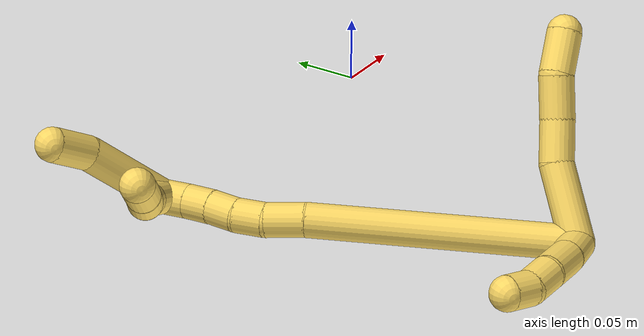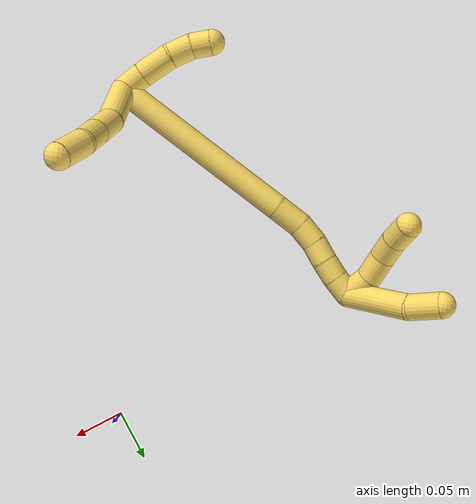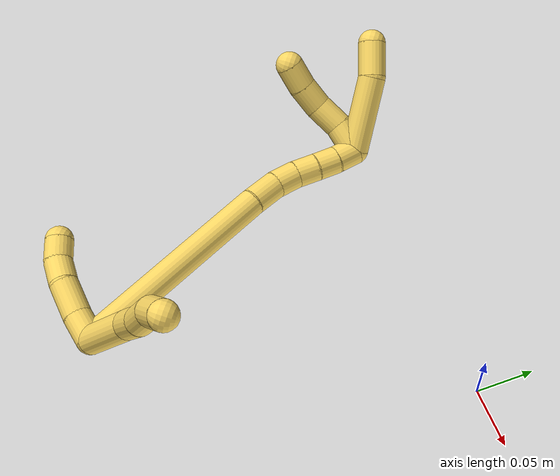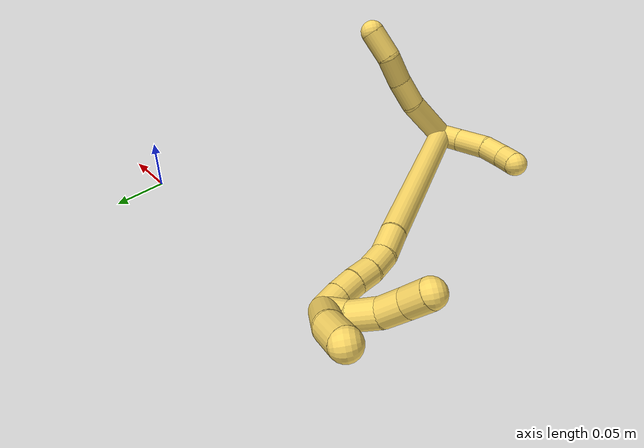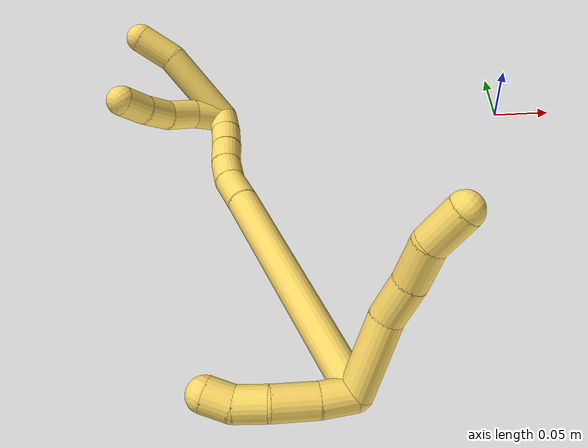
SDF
<sdf version="1.7">
 <world name="default">
  <model name="5">
   <static>0</static>
   <link name="5">
    <collision name="collision-cylinder-e_1_2_8">
     <pose>0.016469 0.018091 -0.014655 -2.25163 0.615653 -1.17604</pose>
     <geometry><cylinder><radius>0.0125</radius><length>0.057036</length></cylinder></geometry>
     <surface>
      <friction><ode><mu>1.16</mu><mu2>1.16</mu2><slip1>0</slip1><slip2>0</slip2></ode></friction>
      <contact><ode><kp>1e+06</kp><kd>1</kd><max_vel>0</max_vel><min_depth>0.001</min_depth></ode></contact>
     </surface>
    </collision>
    <visual name="visual-cylinder-e_1_2_8">
     <pose>0.016469 0.018091 -0.014655 -2.25163 0.615653 -1.17604</pose>
     <geometry><cylinder><radius>0.0125</radius><length>0.057036</length></cylinder></geometry>
     <material><ambient>1 0.858824 0.4 1</ambient></material>
    </visual>
    <collision name="collision-cylinder-e_2_8_9">
     <pose>0.044822 0.044096 -0.034846 -2.1813 0.888355 -1.48075</pose>
     <geometry><cylinder><radius>0.0125</radius><length>0.030628</length></cylinder></geometry>
     <surface>
      <friction><ode><mu>1.16</mu><mu2>1.16</mu2><slip1>0</slip1><slip2>0</slip2></ode></friction>
      <contact><ode><kp>1e+06</kp><kd>1</kd><max_vel>0</max_vel><min_depth>0.001</min_depth></ode></contact>
     </surface>
    </collision>
    <visual name="visual-cylinder-e_2_8_9">
     <pose>0.044822 0.044096 -0.034846 -2.1813 0.888355 -1.48075</pose>
     <geometry><cylinder><radius>0.0125</radius><length>0.030628</length></cylinder></geometry>
     <material><ambient>1 0.858824 0.4 1</ambient></material>
    </visual>
    <collision name="collision-cylinder-e_3_9_10">
     <pose>0.06823 0.061425 -0.044656 -1.99679 0.83953 -1.2115</pose>
     <geometry><cylinder><radius>0.0125</radius><length>0.030964</length></cylinder></geometry>
     <surface>
      <friction><ode><mu>1.16</mu><mu2>1.16</mu2><slip1>0</slip1><slip2>0</slip2></ode></friction>
      <contact><ode><kp>1e+06</kp><kd>1</kd><max_vel>0</max_vel><min_depth>0.001</min_depth></ode></contact>
     </surface>
    </collision>
    <visual name="visual-cylinder-e_3_9_10">
     <pose>0.06823 0.061425 -0.044656 -1.99679 0.83953 -1.2115</pose>
     <geometry><cylinder><radius>0.0125</radius><length>0.030964</length></cylinder></geometry>
     <material><ambient>1 0.858824 0.4 1</ambient></material>
    </visual>
    <collision name="collision-cylinder-e_4_10_6">
     <pose>0.093242 0.076013 -0.055041 -2.43934 1.035 -1.99802</pose>
     <geometry><cylinder><radius>0.0125</radius><length>0.031372</length></cylinder></geometry>
     <surface>
      <friction><ode><mu>1.16</mu><mu2>1.16</mu2><slip1>0</slip1><slip2>0</slip2></ode></friction>
      <contact><ode><kp>1e+06</kp><kd>1</kd><max_vel>0</max_vel><min_depth>0.001</min_depth></ode></contact>
     </surface>
    </collision>
    <visual name="visual-cylinder-e_4_10_6">
     <pose>0.093242 0.076013 -0.055041 -2.43934 1.035 -1.99802</pose>
     <geometry><cylinder><radius>0.0125</radius><length>0.031372</length></cylinder></geometry>
     <material><ambient>1 0.858824 0.4 1</ambient></material>
    </visual>
    <collision name="collision-cylinder-e_1_2_11">
     <pose>-0.006309 0.005345 0.008983 -0.536743 -0.543051 0.152826</pose>
     <geometry><cylinder><radius>0.0125</radius><length>0.024418</length></cylinder></geometry>
     <surface>
      <friction><ode><mu>1.16</mu><mu2>1.16</mu2><slip1>0</slip1><slip2>0</slip2></ode></friction>
      <contact><ode><kp>1e+06</kp><kd>1</kd><max_vel>0</max_vel><min_depth>0.001</min_depth></ode></contact>
     </surface>
    </collision>
    <visual name="visual-cylinder-e_1_2_11">
     <pose>-0.006309 0.005345 0.008983 -0.536743 -0.543051 0.152826</pose>
     <geometry><cylinder><radius>0.0125</radius><length>0.024418</length></cylinder></geometry>
     <material><ambient>1 0.858824 0.4 1</ambient></material>
    </visual>
    <collision name="collision-cylinder-e_2_11_12">
     <pose>-0.020968 0.019263 0.02892 -0.664032 -0.540585 0.19048</pose>
     <geometry><cylinder><radius>0.0125</radius><length>0.032449</length></cylinder></geometry>
     <surface>
      <friction><ode><mu>1.16</mu><mu2>1.16</mu2><slip1>0</slip1><slip2>0</slip2></ode></friction>
      <contact><ode><kp>1e+06</kp><kd>1</kd><max_vel>0</max_vel><min_depth>0.001</min_depth></ode></contact>
     </surface>
    </collision>
    <visual name="visual-cylinder-e_2_11_12">
     <pose>-0.020968 0.019263 0.02892 -0.664032 -0.540585 0.19048</pose>
     <geometry><cylinder><radius>0.0125</radius><length>0.032449</length></cylinder></geometry>
     <material><ambient>1 0.858824 0.4 1</ambient></material>
    </visual>
    <collision name="collision-cylinder-e_3_12_13">
     <pose>-0.037151 0.033419 0.046234 -0.720515 -0.746894 0.293089</pose>
     <geometry><cylinder><radius>0.0125</radius><length>0.023064</length></cylinder></geometry>
     <surface>
      <friction><ode><mu>1.16</mu><mu2>1.16</mu2><slip1>0</slip1><slip2>0</slip2></ode></friction>
      <contact><ode><kp>1e+06</kp><kd>1</kd><max_vel>0</max_vel><min_depth>0.001</min_depth></ode></contact>
     </surface>
    </collision>
    <visual name="visual-cylinder-e_3_12_13">
     <pose>-0.037151 0.033419 0.046234 -0.720515 -0.746894 0.293089</pose>
     <geometry><cylinder><radius>0.0125</radius><length>0.023064</length></cylinder></geometry>
     <material><ambient>1 0.858824 0.4 1</ambient></material>
    </visual>
    <collision name="collision-cylinder-e_4_13_5">
     <pose>-0.051108 0.046254 0.055853 -1.1483 -0.656194 0.433454</pose>
     <geometry><cylinder><radius>0.0125</radius><length>0.02007</length></cylinder></geometry>
     <surface>
      <friction><ode><mu>1.16</mu><mu2>1.16</mu2><slip1>0</slip1><slip2>0</slip2></ode></friction>
      <contact><ode><kp>1e+06</kp><kd>1</kd><max_vel>0</max_vel><min_depth>0.001</min_depth></ode></contact>
     </surface>
    </collision>
    <visual name="visual-cylinder-e_4_13_5">
     <pose>-0.051108 0.046254 0.055853 -1.1483 -0.656194 0.433454</pose>
     <geometry><cylinder><radius>0.0125</radius><length>0.02007</length></cylinder></geometry>
     <material><ambient>1 0.858824 0.4 1</ambient></material>
    </visual>
    <collision name="collision-cylinder-e_1_2_14">
     <pose>-0.054689 0.063727 -0.043176 -2.16627 -0.617721 1.08316</pose>
     <geometry><cylinder><radius>0.0125</radius><length>0.188851</length></cylinder></geometry>
     <surface>
      <friction><ode><mu>1.16</mu><mu2>1.16</mu2><slip1>0</slip1><slip2>0</slip2></ode></friction>
      <contact><ode><kp>1e+06</kp><kd>1</kd><max_vel>0</max_vel><min_depth>0.001</min_depth></ode></contact>
     </surface>
    </collision>
    <visual name="visual-cylinder-e_1_2_14">
     <pose>-0.054689 0.063727 -0.043176 -2.16627 -0.617721 1.08316</pose>
     <geometry><cylinder><radius>0.0125</radius><length>0.188851</length></cylinder></geometry>
     <material><ambient>1 0.858824 0.4 1</ambient></material>
    </visual>
    <collision name="collision-cylinder-e_2_14_15">
     <pose>-0.118617 0.135989 -0.093126 -2.24178 -0.703228 1.29928</pose>
     <geometry><cylinder><radius>0.0125</radius><length>0.028571</length></cylinder></geometry>
     <surface>
      <friction><ode><mu>1.16</mu><mu2>1.16</mu2><slip1>0</slip1><slip2>0</slip2></ode></friction>
      <contact><ode><kp>1e+06</kp><kd>1</kd><max_vel>0</max_vel><min_depth>0.001</min_depth></ode></contact>
     </surface>
    </collision>
    <visual name="visual-cylinder-e_2_14_15">
     <pose>-0.118617 0.135989 -0.093126 -2.24178 -0.703228 1.29928</pose>
     <geometry><cylinder><radius>0.0125</radius><length>0.028571</length></cylinder></geometry>
     <material><ambient>1 0.858824 0.4 1</ambient></material>
    </visual>
    <collision name="collision-cylinder-e_3_15_16">
     <pose>-0.133273 0.150836 -0.10705 -2.4182 -0.516606 1.21921</pose>
     <geometry><cylinder><radius>0.0125</radius><length>0.021937</length></cylinder></geometry>
     <surface>
      <friction><ode><mu>1.16</mu><mu2>1.16</mu2><slip1>0</slip1><slip2>0</slip2></ode></friction>
      <contact><ode><kp>1e+06</kp><kd>1</kd><max_vel>0</max_vel><min_depth>0.001</min_depth></ode></contact>
     </surface>
    </collision>
    <visual name="visual-cylinder-e_3_15_16">
     <pose>-0.133273 0.150836 -0.10705 -2.4182 -0.516606 1.21921</pose>
     <geometry><cylinder><radius>0.0125</radius><length>0.021937</length></cylinder></geometry>
     <material><ambient>1 0.858824 0.4 1</ambient></material>
    </visual>
    <collision name="collision-cylinder-e_4_16_17">
     <pose>-0.142236 0.162658 -0.121975 -2.52517 -0.356092 1.02896</pose>
     <geometry><cylinder><radius>0.0125</radius><length>0.020336</length></cylinder></geometry>
     <surface>
      <friction><ode><mu>1.16</mu><mu2>1.16</mu2><slip1>0</slip1><slip2>0</slip2></ode></friction>
      <contact><ode><kp>1e+06</kp><kd>1</kd><max_vel>0</max_vel><min_depth>0.001</min_depth></ode></contact>
     </surface>
    </collision>
    <visual name="visual-cylinder-e_4_16_17">
     <pose>-0.142236 0.162658 -0.121975 -2.52517 -0.356092 1.02896</pose>
     <geometry><cylinder><radius>0.0125</radius><length>0.020336</length></cylinder></geometry>
     <material><ambient>1 0.858824 0.4 1</ambient></material>
    </visual>
    <collision name="collision-cylinder-e_5_17_18">
     <pose>-0.150025 0.173439 -0.137121 -2.52069 -0.438127 1.21331</pose>
     <geometry><cylinder><radius>0.0125</radius><length>0.020011</length></cylinder></geometry>
     <surface>
      <friction><ode><mu>1.16</mu><mu2>1.16</mu2><slip1>0</slip1><slip2>0</slip2></ode></friction>
      <contact><ode><kp>1e+06</kp><kd>1</kd><max_vel>0</max_vel><min_depth>0.001</min_depth></ode></contact>
     </surface>
    </collision>
    <visual name="visual-cylinder-e_5_17_18">
     <pose>-0.150025 0.173439 -0.137121 -2.52069 -0.438127 1.21331</pose>
     <geometry><cylinder><radius>0.0125</radius><length>0.020011</length></cylinder></geometry>
     <material><ambient>1 0.858824 0.4 1</ambient></material>
    </visual>
    <collision name="collision-cylinder-e_6_18_1">
     <pose>-0.159054 0.184599 -0.151227 -2.42337 -0.490967 1.17702</pose>
     <geometry><cylinder><radius>0.0125</radius><length>0.020292</length></cylinder></geometry>
     <surface>
      <friction><ode><mu>1.16</mu><mu2>1.16</mu2><slip1>0</slip1><slip2>0</slip2></ode></friction>
      <contact><ode><kp>1e+06</kp><kd>1</kd><max_vel>0</max_vel><min_depth>0.001</min_depth></ode></contact>
     </surface>
    </collision>
    <visual name="visual-cylinder-e_6_18_1">
     <pose>-0.159054 0.184599 -0.151227 -2.42337 -0.490967 1.17702</pose>
     <geometry><cylinder><radius>0.0125</radius><length>0.020292</length></cylinder></geometry>
     <material><ambient>1 0.858824 0.4 1</ambient></material>
    </visual>
    <collision name="collision-cylinder-e_1_1_19">
     <pose>-0.167071 0.198522 -0.147525 -0.655987 -0.240668 0.082247</pose>
     <geometry><cylinder><radius>0.0125</radius><length>0.027131</length></cylinder></geometry>
     <surface>
      <friction><ode><mu>1.16</mu><mu2>1.16</mu2><slip1>0</slip1><slip2>0</slip2></ode></friction>
      <contact><ode><kp>1e+06</kp><kd>1</kd><max_vel>0</max_vel><min_depth>0.001</min_depth></ode></contact>
     </surface>
    </collision>
    <visual name="visual-cylinder-e_1_1_19">
     <pose>-0.167071 0.198522 -0.147525 -0.655987 -0.240668 0.082247</pose>
     <geometry><cylinder><radius>0.0125</radius><length>0.027131</length></cylinder></geometry>
     <material><ambient>1 0.858824 0.4 1</ambient></material>
    </visual>
    <collision name="collision-cylinder-e_2_19_20">
     <pose>-0.17093 0.211963 -0.125213 -0.427276 -0.047928 0.0104</pose>
     <geometry><cylinder><radius>0.0125</radius><length>0.026118</length></cylinder></geometry>
     <surface>
      <friction><ode><mu>1.16</mu><mu2>1.16</mu2><slip1>0</slip1><slip2>0</slip2></ode></friction>
      <contact><ode><kp>1e+06</kp><kd>1</kd><max_vel>0</max_vel><min_depth>0.001</min_depth></ode></contact>
     </surface>
    </collision>
    <visual name="visual-cylinder-e_2_19_20">
     <pose>-0.17093 0.211963 -0.125213 -0.427276 -0.047928 0.0104</pose>
     <geometry><cylinder><radius>0.0125</radius><length>0.026118</length></cylinder></geometry>
     <material><ambient>1 0.858824 0.4 1</ambient></material>
    </visual>
    <collision name="collision-cylinder-e_3_20_21">
     <pose>-0.169427 0.224019 -0.103667 -0.602197 0.179327 -0.055824</pose>
     <geometry><cylinder><radius>0.0125</radius><length>0.023864</length></cylinder></geometry>
     <surface>
      <friction><ode><mu>1.16</mu><mu2>1.16</mu2><slip1>0</slip1><slip2>0</slip2></ode></friction>
      <contact><ode><kp>1e+06</kp><kd>1</kd><max_vel>0</max_vel><min_depth>0.001</min_depth></ode></contact>
     </surface>
    </collision>
    <visual name="visual-cylinder-e_3_20_21">
     <pose>-0.169427 0.224019 -0.103667 -0.602197 0.179327 -0.055824</pose>
     <geometry><cylinder><radius>0.0125</radius><length>0.023864</length></cylinder></geometry>
     <material><ambient>1 0.858824 0.4 1</ambient></material>
    </visual>
    <collision name="collision-cylinder-e_4_21_4">
     <pose>-0.165193 0.238264 -0.085694 -0.741198 0.185047 -0.072075</pose>
     <geometry><cylinder><radius>0.0125</radius><length>0.022887</length></cylinder></geometry>
     <surface>
      <friction><ode><mu>1.16</mu><mu2>1.16</mu2><slip1>0</slip1><slip2>0</slip2></ode></friction>
      <contact><ode><kp>1e+06</kp><kd>1</kd><max_vel>0</max_vel><min_depth>0.001</min_depth></ode></contact>
     </surface>
    </collision>
    <visual name="visual-cylinder-e_4_21_4">
     <pose>-0.165193 0.238264 -0.085694 -0.741198 0.185047 -0.072075</pose>
     <geometry><cylinder><radius>0.0125</radius><length>0.022887</length></cylinder></geometry>
     <material><ambient>1 0.858824 0.4 1</ambient></material>
    </visual>
    <collision name="collision-cylinder-e_1_1_22">
     <pose>-0.167966 0.224314 -0.15475 -1.47603 -0.120918 0.109993</pose>
     <geometry><cylinder><radius>0.0125</radius><length>0.06846</length></cylinder></geometry>
     <surface>
      <friction><ode><mu>1.16</mu><mu2>1.16</mu2><slip1>0</slip1><slip2>0</slip2></ode></friction>
      <contact><ode><kp>1e+06</kp><kd>1</kd><max_vel>0</max_vel><min_depth>0.001</min_depth></ode></contact>
     </surface>
    </collision>
    <visual name="visual-cylinder-e_1_1_22">
     <pose>-0.167966 0.224314 -0.15475 -1.47603 -0.120918 0.109993</pose>
     <geometry><cylinder><radius>0.0125</radius><length>0.06846</length></cylinder></geometry>
     <material><ambient>1 0.858824 0.4 1</ambient></material>
    </visual>
    <collision name="collision-cylinder-e_2_22_3">
     <pose>-0.177116 0.272253 -0.146598 -1.23429 -0.324009 0.230921</pose>
     <geometry><cylinder><radius>0.0125</radius><length>0.03154</length></cylinder></geometry>
     <surface>
      <friction><ode><mu>1.16</mu><mu2>1.16</mu2><slip1>0</slip1><slip2>0</slip2></ode></friction>
      <contact><ode><kp>1e+06</kp><kd>1</kd><max_vel>0</max_vel><min_depth>0.001</min_depth></ode></contact>
     </surface>
    </collision>
    <visual name="visual-cylinder-e_2_22_3">
     <pose>-0.177116 0.272253 -0.146598 -1.23429 -0.324009 0.230921</pose>
     <geometry><cylinder><radius>0.0125</radius><length>0.03154</length></cylinder></geometry>
     <material><ambient>1 0.858824 0.4 1</ambient></material>
    </visual>
    <collision name="collision-sphere-3">
     <pose>-0.182137 0.286364 -0.141662 0 -0 0</pose>
     <geometry><sphere><radius>0.0125</radius></sphere></geometry>
     <surface>
      <friction><ode><mu>1.16</mu><mu2>1.16</mu2><slip1>0</slip1><slip2>0</slip2></ode></friction>
      <contact><ode><kp>1e+06</kp><kd>1</kd><max_vel>0</max_vel><min_depth>0.001</min_depth></ode></contact>
     </surface>
    </collision>
    <visual name="visual-sphere-3">
     <pose>-0.182137 0.286364 -0.141662 0 -0 0</pose>
     <geometry><sphere><radius>0.0125</radius></sphere></geometry>
     <material><ambient>1 0.858824 0.4 1</ambient></material>
    </visual>
    <collision name="collision-sphere-22">
     <pose>-0.172095 0.258142 -0.151534 0 -0 0</pose>
     <geometry><sphere><radius>0.0125</radius></sphere></geometry>
     <surface>
      <friction><ode><mu>1.16</mu><mu2>1.16</mu2><slip1>0</slip1><slip2>0</slip2></ode></friction>
      <contact><ode><kp>1e+06</kp><kd>1</kd><max_vel>0</max_vel><min_depth>0.001</min_depth></ode></contact>
     </surface>
    </collision>
    <visual name="visual-sphere-22">
     <pose>-0.172095 0.258142 -0.151534 0 -0 0</pose>
     <geometry><sphere><radius>0.0125</radius></sphere></geometry>
     <material><ambient>1 0.858824 0.4 1</ambient></material>
    </visual>
    <collision name="collision-sphere-4">
     <pose>-0.163088 0.245859 -0.077397 0 -0 0</pose>
     <geometry><sphere><radius>0.0125</radius></sphere></geometry>
     <surface>
      <friction><ode><mu>1.16</mu><mu2>1.16</mu2><slip1>0</slip1><slip2>0</slip2></ode></friction>
      <contact><ode><kp>1e+06</kp><kd>1</kd><max_vel>0</max_vel><min_depth>0.001</min_depth></ode></contact>
     </surface>
    </collision>
    <visual name="visual-sphere-4">
     <pose>-0.163088 0.245859 -0.077397 0 -0 0</pose>
     <geometry><sphere><radius>0.0125</radius></sphere></geometry>
     <material><ambient>1 0.858824 0.4 1</ambient></material>
    </visual>
    <collision name="collision-sphere-21">
     <pose>-0.167299 0.230669 -0.093992 0 -0 0</pose>
     <geometry><sphere><radius>0.0125</radius></sphere></geometry>
     <surface>
      <friction><ode><mu>1.16</mu><mu2>1.16</mu2><slip1>0</slip1><slip2>0</slip2></ode></friction>
      <contact><ode><kp>1e+06</kp><kd>1</kd><max_vel>0</max_vel><min_depth>0.001</min_depth></ode></contact>
     </surface>
    </collision>
    <visual name="visual-sphere-21">
     <pose>-0.167299 0.230669 -0.093992 0 -0 0</pose>
     <geometry><sphere><radius>0.0125</radius></sphere></geometry>
     <material><ambient>1 0.858824 0.4 1</ambient></material>
    </visual>
    <collision name="collision-sphere-20">
     <pose>-0.171556 0.217369 -0.113342 0 -0 0</pose>
     <geometry><sphere><radius>0.0125</radius></sphere></geometry>
     <surface>
      <friction><ode><mu>1.16</mu><mu2>1.16</mu2><slip1>0</slip1><slip2>0</slip2></ode></friction>
      <contact><ode><kp>1e+06</kp><kd>1</kd><max_vel>0</max_vel><min_depth>0.001</min_depth></ode></contact>
     </surface>
    </collision>
    <visual name="visual-sphere-20">
     <pose>-0.171556 0.217369 -0.113342 0 -0 0</pose>
     <geometry><sphere><radius>0.0125</radius></sphere></geometry>
     <material><ambient>1 0.858824 0.4 1</ambient></material>
    </visual>
    <collision name="collision-sphere-11">
     <pose>-0.012618 0.01069 0.017965 0 -0 0</pose>
     <geometry><sphere><radius>0.0125</radius></sphere></geometry>
     <surface>
      <friction><ode><mu>1.16</mu><mu2>1.16</mu2><slip1>0</slip1><slip2>0</slip2></ode></friction>
      <contact><ode><kp>1e+06</kp><kd>1</kd><max_vel>0</max_vel><min_depth>0.001</min_depth></ode></contact>
     </surface>
    </collision>
    <visual name="visual-sphere-11">
     <pose>-0.012618 0.01069 0.017965 0 -0 0</pose>
     <geometry><sphere><radius>0.0125</radius></sphere></geometry>
     <material><ambient>1 0.858824 0.4 1</ambient></material>
    </visual>
    <collision name="collision-sphere-6">
     <pose>0.106729 0.081185 -0.061155 0 -0 0</pose>
     <geometry><sphere><radius>0.0125</radius></sphere></geometry>
     <surface>
      <friction><ode><mu>1.16</mu><mu2>1.16</mu2><slip1>0</slip1><slip2>0</slip2></ode></friction>
      <contact><ode><kp>1e+06</kp><kd>1</kd><max_vel>0</max_vel><min_depth>0.001</min_depth></ode></contact>
     </surface>
    </collision>
    <visual name="visual-sphere-6">
     <pose>0.106729 0.081185 -0.061155 0 -0 0</pose>
     <geometry><sphere><radius>0.0125</radius></sphere></geometry>
     <material><ambient>1 0.858824 0.4 1</ambient></material>
    </visual>
    <collision name="collision-sphere-10">
     <pose>0.079754 0.07084 -0.048928 0 -0 0</pose>
     <geometry><sphere><radius>0.0125</radius></sphere></geometry>
     <surface>
      <friction><ode><mu>1.16</mu><mu2>1.16</mu2><slip1>0</slip1><slip2>0</slip2></ode></friction>
      <contact><ode><kp>1e+06</kp><kd>1</kd><max_vel>0</max_vel><min_depth>0.001</min_depth></ode></contact>
     </surface>
    </collision>
    <visual name="visual-sphere-10">
     <pose>0.079754 0.07084 -0.048928 0 -0 0</pose>
     <geometry><sphere><radius>0.0125</radius></sphere></geometry>
     <material><ambient>1 0.858824 0.4 1</ambient></material>
    </visual>
    <collision name="collision-sphere-9">
     <pose>0.056707 0.05201 -0.040383 0 -0 0</pose>
     <geometry><sphere><radius>0.0125</radius></sphere></geometry>
     <surface>
      <friction><ode><mu>1.16</mu><mu2>1.16</mu2><slip1>0</slip1><slip2>0</slip2></ode></friction>
      <contact><ode><kp>1e+06</kp><kd>1</kd><max_vel>0</max_vel><min_depth>0.001</min_depth></ode></contact>
     </surface>
    </collision>
    <visual name="visual-sphere-9">
     <pose>0.056707 0.05201 -0.040383 0 -0 0</pose>
     <geometry><sphere><radius>0.0125</radius></sphere></geometry>
     <material><ambient>1 0.858824 0.4 1</ambient></material>
    </visual>
    <collision name="collision-sphere-2">
     <geometry><sphere><radius>0.0125</radius></sphere></geometry>
     <surface>
      <friction><ode><mu>1.16</mu><mu2>1.16</mu2><slip1>0</slip1><slip2>0</slip2></ode></friction>
      <contact><ode><kp>1e+06</kp><kd>1</kd><max_vel>0</max_vel><min_depth>0.001</min_depth></ode></contact>
     </surface>
    </collision>
    <visual name="visual-sphere-2">
     <geometry><sphere><radius>0.0125</radius></sphere></geometry>
     <material><ambient>1 0.858824 0.4 1</ambient></material>
    </visual>
    <collision name="collision-sphere-19">
     <pose>-0.170304 0.206558 -0.137085 0 -0 0</pose>
     <geometry><sphere><radius>0.0125</radius></sphere></geometry>
     <surface>
      <friction><ode><mu>1.16</mu><mu2>1.16</mu2><slip1>0</slip1><slip2>0</slip2></ode></friction>
      <contact><ode><kp>1e+06</kp><kd>1</kd><max_vel>0</max_vel><min_depth>0.001</min_depth></ode></contact>
     </surface>
    </collision>
    <visual name="visual-sphere-19">
     <pose>-0.170304 0.206558 -0.137085 0 -0 0</pose>
     <geometry><sphere><radius>0.0125</radius></sphere></geometry>
     <material><ambient>1 0.858824 0.4 1</ambient></material>
    </visual>
    <collision name="collision-sphere-8">
     <pose>0.032938 0.036183 -0.029309 0 -0 0</pose>
     <geometry><sphere><radius>0.0125</radius></sphere></geometry>
     <surface>
      <friction><ode><mu>1.16</mu><mu2>1.16</mu2><slip1>0</slip1><slip2>0</slip2></ode></friction>
      <contact><ode><kp>1e+06</kp><kd>1</kd><max_vel>0</max_vel><min_depth>0.001</min_depth></ode></contact>
     </surface>
    </collision>
    <visual name="visual-sphere-8">
     <pose>0.032938 0.036183 -0.029309 0 -0 0</pose>
     <geometry><sphere><radius>0.0125</radius></sphere></geometry>
     <material><ambient>1 0.858824 0.4 1</ambient></material>
    </visual>
    <collision name="collision-sphere-12">
     <pose>-0.029317 0.027836 0.039875 0 -0 0</pose>
     <geometry><sphere><radius>0.0125</radius></sphere></geometry>
     <surface>
      <friction><ode><mu>1.16</mu><mu2>1.16</mu2><slip1>0</slip1><slip2>0</slip2></ode></friction>
      <contact><ode><kp>1e+06</kp><kd>1</kd><max_vel>0</max_vel><min_depth>0.001</min_depth></ode></contact>
     </surface>
    </collision>
    <visual name="visual-sphere-12">
     <pose>-0.029317 0.027836 0.039875 0 -0 0</pose>
     <geometry><sphere><radius>0.0125</radius></sphere></geometry>
     <material><ambient>1 0.858824 0.4 1</ambient></material>
    </visual>
    <collision name="collision-sphere-13">
     <pose>-0.044986 0.039002 0.052593 0 -0 0</pose>
     <geometry><sphere><radius>0.0125</radius></sphere></geometry>
     <surface>
      <friction><ode><mu>1.16</mu><mu2>1.16</mu2><slip1>0</slip1><slip2>0</slip2></ode></friction>
      <contact><ode><kp>1e+06</kp><kd>1</kd><max_vel>0</max_vel><min_depth>0.001</min_depth></ode></contact>
     </surface>
    </collision>
    <visual name="visual-sphere-13">
     <pose>-0.044986 0.039002 0.052593 0 -0 0</pose>
     <geometry><sphere><radius>0.0125</radius></sphere></geometry>
     <material><ambient>1 0.858824 0.4 1</ambient></material>
    </visual>
    <collision name="collision-sphere-5">
     <pose>-0.057231 0.053506 0.059113 0 -0 0</pose>
     <geometry><sphere><radius>0.0125</radius></sphere></geometry>
     <surface>
      <friction><ode><mu>1.16</mu><mu2>1.16</mu2><slip1>0</slip1><slip2>0</slip2></ode></friction>
      <contact><ode><kp>1e+06</kp><kd>1</kd><max_vel>0</max_vel><min_depth>0.001</min_depth></ode></contact>
     </surface>
    </collision>
    <visual name="visual-sphere-5">
     <pose>-0.057231 0.053506 0.059113 0 -0 0</pose>
     <geometry><sphere><radius>0.0125</radius></sphere></geometry>
     <material><ambient>1 0.858824 0.4 1</ambient></material>
    </visual>
    <collision name="collision-sphere-14">
     <pose>-0.109379 0.127454 -0.086351 0 -0 0</pose>
     <geometry><sphere><radius>0.0125</radius></sphere></geometry>
     <surface>
      <friction><ode><mu>1.16</mu><mu2>1.16</mu2><slip1>0</slip1><slip2>0</slip2></ode></friction>
      <contact><ode><kp>1e+06</kp><kd>1</kd><max_vel>0</max_vel><min_depth>0.001</min_depth></ode></contact>
     </surface>
    </collision>
    <visual name="visual-sphere-14">
     <pose>-0.109379 0.127454 -0.086351 0 -0 0</pose>
     <geometry><sphere><radius>0.0125</radius></sphere></geometry>
     <material><ambient>1 0.858824 0.4 1</ambient></material>
    </visual>
    <collision name="collision-sphere-15">
     <pose>-0.127855 0.144523 -0.099901 0 -0 0</pose>
     <geometry><sphere><radius>0.0125</radius></sphere></geometry>
     <surface>
      <friction><ode><mu>1.16</mu><mu2>1.16</mu2><slip1>0</slip1><slip2>0</slip2></ode></friction>
      <contact><ode><kp>1e+06</kp><kd>1</kd><max_vel>0</max_vel><min_depth>0.001</min_depth></ode></contact>
     </surface>
    </collision>
    <visual name="visual-sphere-15">
     <pose>-0.127855 0.144523 -0.099901 0 -0 0</pose>
     <geometry><sphere><radius>0.0125</radius></sphere></geometry>
     <material><ambient>1 0.858824 0.4 1</ambient></material>
    </visual>
    <collision name="collision-sphere-16">
     <pose>-0.138691 0.157149 -0.114199 0 -0 0</pose>
     <geometry><sphere><radius>0.0125</radius></sphere></geometry>
     <surface>
      <friction><ode><mu>1.16</mu><mu2>1.16</mu2><slip1>0</slip1><slip2>0</slip2></ode></friction>
      <contact><ode><kp>1e+06</kp><kd>1</kd><max_vel>0</max_vel><min_depth>0.001</min_depth></ode></contact>
     </surface>
    </collision>
    <visual name="visual-sphere-16">
     <pose>-0.138691 0.157149 -0.114199 0 -0 0</pose>
     <geometry><sphere><radius>0.0125</radius></sphere></geometry>
     <material><ambient>1 0.858824 0.4 1</ambient></material>
    </visual>
    <collision name="collision-sphere-17">
     <pose>-0.14578 0.168168 -0.129751 0 -0 0</pose>
     <geometry><sphere><radius>0.0125</radius></sphere></geometry>
     <surface>
      <friction><ode><mu>1.16</mu><mu2>1.16</mu2><slip1>0</slip1><slip2>0</slip2></ode></friction>
      <contact><ode><kp>1e+06</kp><kd>1</kd><max_vel>0</max_vel><min_depth>0.001</min_depth></ode></contact>
     </surface>
    </collision>
    <visual name="visual-sphere-17">
     <pose>-0.14578 0.168168 -0.129751 0 -0 0</pose>
     <geometry><sphere><radius>0.0125</radius></sphere></geometry>
     <material><ambient>1 0.858824 0.4 1</ambient></material>
    </visual>
    <collision name="collision-sphere-18">
     <pose>-0.15427 0.17871 -0.14449 0 -0 0</pose>
     <geometry><sphere><radius>0.0125</radius></sphere></geometry>
     <surface>
      <friction><ode><mu>1.16</mu><mu2>1.16</mu2><slip1>0</slip1><slip2>0</slip2></ode></friction>
      <contact><ode><kp>1e+06</kp><kd>1</kd><max_vel>0</max_vel><min_depth>0.001</min_depth></ode></contact>
     </surface>
    </collision>
    <visual name="visual-sphere-18">
     <pose>-0.15427 0.17871 -0.14449 0 -0 0</pose>
     <geometry><sphere><radius>0.0125</radius></sphere></geometry>
     <material><ambient>1 0.858824 0.4 1</ambient></material>
    </visual>
    <collision name="collision-sphere-1">
     <pose>-0.163838 0.190487 -0.157965 0 -0 0</pose>
     <geometry><sphere><radius>0.0125</radius></sphere></geometry>
     <surface>
      <friction><ode><mu>1.16</mu><mu2>1.16</mu2><slip1>0</slip1><slip2>0</slip2></ode></friction>
      <contact><ode><kp>1e+06</kp><kd>1</kd><max_vel>0</max_vel><min_depth>0.001</min_depth></ode></contact>
     </surface>
    </collision>
    <visual name="visual-sphere-1">
     <pose>-0.163838 0.190487 -0.157965 0 -0 0</pose>
     <geometry><sphere><radius>0.0125</radius></sphere></geometry>
     <material><ambient>1 0.858824 0.4 1</ambient></material>
    </visual>
    <inertial>
     <pose>-0.073382 0.112723 -0.066733 0 -0 0</pose>
     <mass>0.75</mass>
     <inertia>
      <ixx>0.000668</ixx>
      <ixy>0</ixy>
      <ixz>0</ixz>
      <iyy>0.000563</iyy>
      <iyz>0</iyz>
      <izz>-0.000128</izz>
     </inertia>
    </inertial>
   </link>
   <pose>-0.150981 -0.280176 0.012221 1.34485 -0.742224 -0.494363</pose>
  </model>
 </world>
</sdf>
